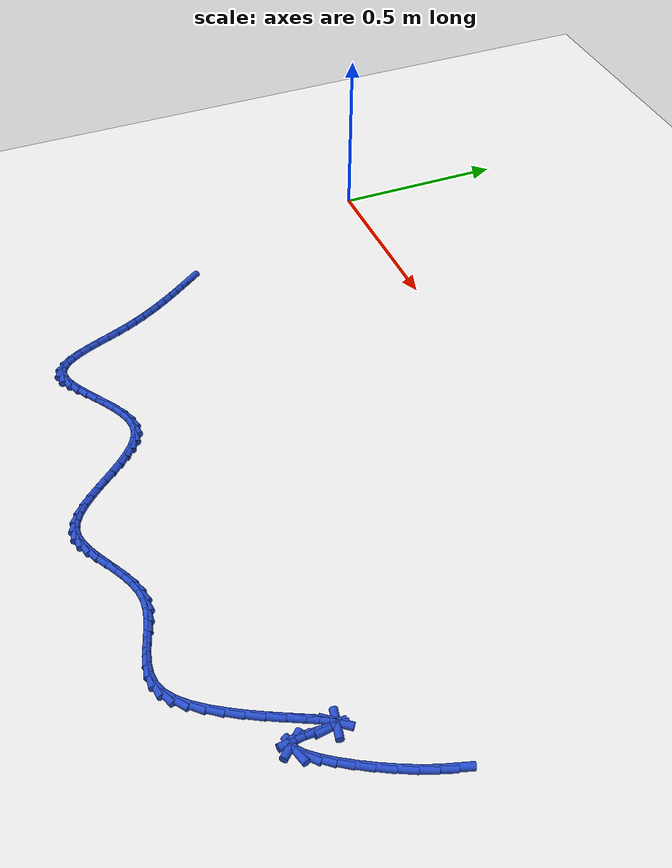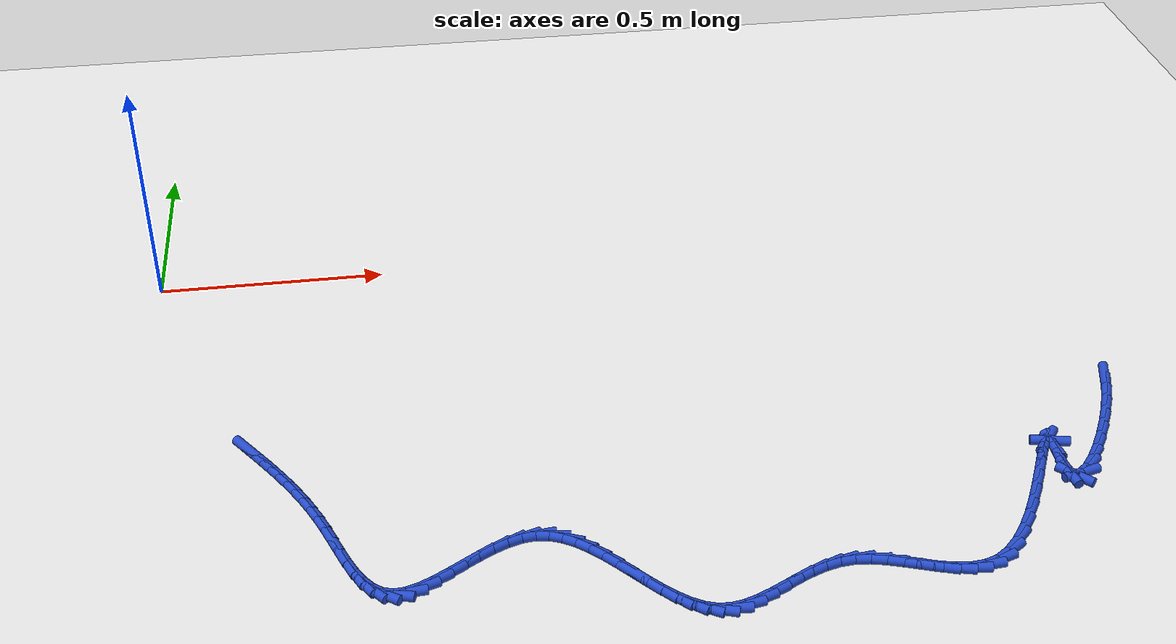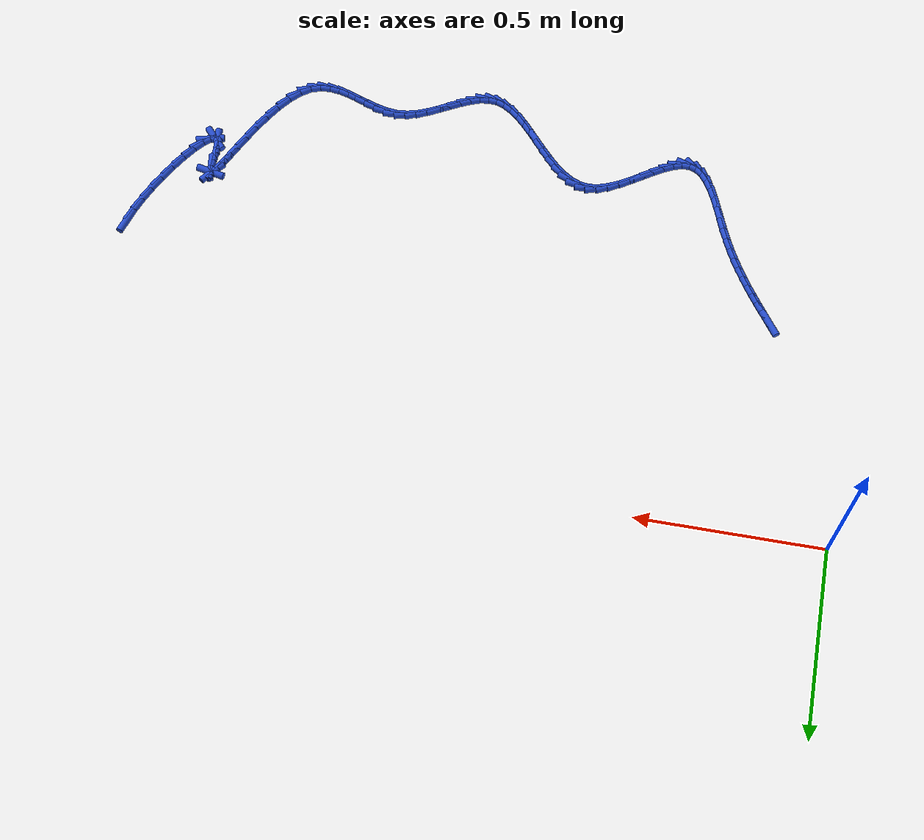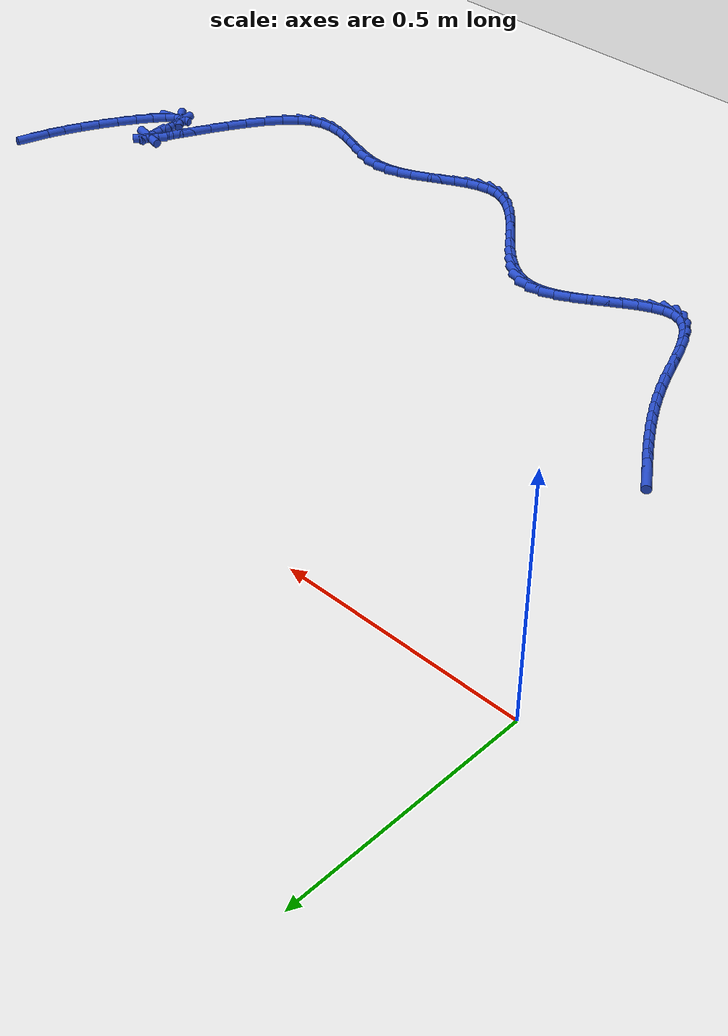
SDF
<sdf version="1.6">
 <world name="default">
  <model name="ground_plane">
   <static>1</static>
   <link name="link">
    <collision name="collision">
     <geometry><plane><normal>0 0 1</normal><size>100 100</size></plane></geometry>
     <surface><friction><ode><mu>100</mu><mu2>50</mu2></ode></friction></surface>
    </collision>
    <visual name="visual">
     <cast_shadows>0</cast_shadows>
     <geometry><plane><normal>0 0 1</normal><size>100 100</size></plane></geometry>
     <material>
      <script><uri>file://media/materials/scripts/gazebo.material</uri><name>Gazebo/WhiteGlow</name></script>
     </material>
    </visual>
   </link>
  </model>
  <model name="line">
   <link name="link_150">
    <pose>1.997824284073144 -0.6251736266931569 0.01 0 1.57 1.273148133376823</pose>
    <collision name="collision">
     <geometry><cylinder><radius>0.01</radius><length>0.08</length></cylinder></geometry>
    </collision>
    <visual name="visual">
     <material>
      <script><name>Gazebo/Blue</name><uri>file://media/materials/scripts/gazebo.material</uri></script>
     </material>
     <geometry><cylinder><radius>0.01</radius><length>0.08</length></cylinder></geometry>
    </visual>
   </link>
   <link name="link_151">
    <pose>1.9872887275271942 -0.659518107514912 0.01 0 1.57 1.209016525096521</pose>
    <collision name="collision">
     <geometry><cylinder><radius>0.01</radius><length>0.08</length></cylinder></geometry>
    </collision>
    <visual name="visual">
     <material>
      <script><name>Gazebo/Blue</name><uri>file://media/materials/scripts/gazebo.material</uri></script>
     </material>
     <geometry><cylinder><radius>0.01</radius><length>0.08</length></cylinder></geometry>
    </visual>
   </link>
   <link name="link_152">
    <pose>1.9732027065877626 -0.6967397626959203 0.01 0 1.57 1.1523223785344883</pose>
    <collision name="collision">
     <geometry><cylinder><radius>0.01</radius><length>0.08</length></cylinder></geometry>
    </collision>
    <visual name="visual">
     <material>
      <script><name>Gazebo/Blue</name><uri>file://media/materials/scripts/gazebo.material</uri></script>
     </material>
     <geometry><cylinder><radius>0.01</radius><length>0.08</length></cylinder></geometry>
    </visual>
   </link>
   <link name="link_153">
    <pose>1.9555031663717912 -0.736536958267599 0.01 0 1.57 1.1056660417871258</pose>
    <collision name="collision">
     <geometry><cylinder><radius>0.01</radius><length>0.08</length></cylinder></geometry>
    </collision>
    <visual name="visual">
     <material>
      <script><name>Gazebo/Blue</name><uri>file://media/materials/scripts/gazebo.material</uri></script>
     </material>
     <geometry><cylinder><radius>0.01</radius><length>0.08</length></cylinder></geometry>
    </visual>
   </link>
   <link name="link_154">
    <pose>1.93513845444502 -0.7771158570219333 0.01 0 1.57 1.0622238923198977</pose>
    <collision name="collision">
     <geometry><cylinder><radius>0.01</radius><length>0.08</length></cylinder></geometry>
    </collision>
    <visual name="visual">
     <material>
      <script><name>Gazebo/Blue</name><uri>file://media/materials/scripts/gazebo.material</uri></script>
     </material>
     <geometry><cylinder><radius>0.01</radius><length>0.08</length></cylinder></geometry>
    </visual>
   </link>
   <link name="link_155">
    <pose>1.9131899876419094 -0.8164862939744707 0.01 0 1.57 1.015315833927347</pose>
    <collision name="collision">
     <geometry><cylinder><radius>0.01</radius><length>0.08</length></cylinder></geometry>
    </collision>
    <visual name="visual">
     <material>
      <script><name>Gazebo/Blue</name><uri>file://media/materials/scripts/gazebo.material</uri></script>
     </material>
     <geometry><cylinder><radius>0.01</radius><length>0.08</length></cylinder></geometry>
    </visual>
   </link>
   <link name="link_156">
    <pose>1.8907391827969207 -0.8526581041407615 0.01 0 1.57 0.9561040756286149</pose>
    <collision name="collision">
     <geometry><cylinder><radius>0.01</radius><length>0.08</length></cylinder></geometry>
    </collision>
    <visual name="visual">
     <material>
      <script><name>Gazebo/Blue</name><uri>file://media/materials/scripts/gazebo.material</uri></script>
     </material>
     <geometry><cylinder><radius>0.01</radius><length>0.08</length></cylinder></geometry>
    </visual>
   </link>
   <link name="link_157">
    <pose>1.8688674567445145 -0.8836411225363513 0.01 0 1.57 0.8668444785309124</pose>
    <collision name="collision">
     <geometry><cylinder><radius>0.01</radius><length>0.08</length></cylinder></geometry>
    </collision>
    <visual name="visual">
     <material>
      <script><name>Gazebo/Blue</name><uri>file://media/materials/scripts/gazebo.material</uri></script>
     </material>
     <geometry><cylinder><radius>0.01</radius><length>0.08</length></cylinder></geometry>
    </visual>
   </link>
   <link name="link_158">
    <pose>1.8486562263191524 -0.9074451841767902 0.01 0 1.57 0.6973398097728181</pose>
    <collision name="collision">
     <geometry><cylinder><radius>0.01</radius><length>0.08</length></cylinder></geometry>
    </collision>
    <visual name="visual">
     <material>
      <script><name>Gazebo/Blue</name><uri>file://media/materials/scripts/gazebo.material</uri></script>
     </material>
     <geometry><cylinder><radius>0.01</radius><length>0.08</length></cylinder></geometry>
    </visual>
   </link>
   <link name="link_159">
    <pose>1.8311869083552945 -0.9220801240776264 0.01 0 1.57 0.24939864420471491</pose>
    <collision name="collision">
     <geometry><cylinder><radius>0.01</radius><length>0.08</length></cylinder></geometry>
    </collision>
    <visual name="visual">
     <material>
      <script><name>Gazebo/Blue</name><uri>file://media/materials/scripts/gazebo.material</uri></script>
     </material>
     <geometry><cylinder><radius>0.01</radius><length>0.08</length></cylinder></geometry>
    </visual>
   </link>
   <link name="link_160">
    <pose>1.8175409196874015 -0.9255557772544084 0.01 0 1.57 -0.8359959346424193</pose>
    <collision name="collision">
     <geometry><cylinder><radius>0.01</radius><length>0.08</length></cylinder></geometry>
    </collision>
    <visual name="visual">
     <material>
      <script><name>Gazebo/Blue</name><uri>file://media/materials/scripts/gazebo.material</uri></script>
     </material>
     <geometry><cylinder><radius>0.01</radius><length>0.08</length></cylinder></geometry>
    </visual>
   </link>
   <link name="link_161">
    <pose>1.808799677149935 -0.915881978722685 0.01 0 1.57 -1.447368604076655</pose>
    <collision name="collision">
     <geometry><cylinder><radius>0.01</radius><length>0.08</length></cylinder></geometry>
    </collision>
    <visual name="visual">
     <material>
      <script><name>Gazebo/Blue</name><uri>file://media/materials/scripts/gazebo.material</uri></script>
     </material>
     <geometry><cylinder><radius>0.01</radius><length>0.08</length></cylinder></geometry>
    </visual>
   </link>
   <link name="link_162">
    <pose>1.8058061577579647 -0.8917520476864306 0.01 0 1.57 1.5444239076101356</pose>
    <collision name="collision">
     <geometry><cylinder><radius>0.01</radius><length>0.08</length></cylinder></geometry>
    </collision>
    <visual name="visual">
     <material>
      <script><name>Gazebo/Blue</name><uri>file://media/materials/scripts/gazebo.material</uri></script>
     </material>
     <geometry><cylinder><radius>0.01</radius><length>0.08</length></cylinder></geometry>
    </visual>
   </link>
   <link name="link_163">
    <pose>1.8066503027493375 -0.8597508393720222 0.01 0 1.57 1.5352184092595864</pose>
    <collision name="collision">
     <geometry><cylinder><radius>0.01</radius><length>0.08</length></cylinder></geometry>
    </collision>
    <visual name="visual">
     <material>
      <script><name>Gazebo/Blue</name><uri>file://media/materials/scripts/gazebo.material</uri></script>
     </material>
     <geometry><cylinder><radius>0.01</radius><length>0.08</length></cylinder></geometry>
    </visual>
   </link>
   <link name="link_164">
    <pose>1.8076548004151183 -0.831529013237535 0.01 0 1.57 -1.4431042362533353</pose>
    <collision name="collision">
     <geometry><cylinder><radius>0.01</radius><length>0.08</length></cylinder></geometry>
    </collision>
    <visual name="visual">
     <material>
      <script><name>Gazebo/Blue</name><uri>file://media/materials/scripts/gazebo.material</uri></script>
     </material>
     <geometry><cylinder><radius>0.01</radius><length>0.08</length></cylinder></geometry>
    </visual>
   </link>
   <link name="link_165">
    <pose>1.8057419084009385 -0.8166300171694167 0.01 0 1.57 -0.21988230270854958</pose>
    <collision name="collision">
     <geometry><cylinder><radius>0.01</radius><length>0.08</length></cylinder></geometry>
    </collision>
    <visual name="visual">
     <material>
      <script><name>Gazebo/Blue</name><uri>file://media/materials/scripts/gazebo.material</uri></script>
     </material>
     <geometry><cylinder><radius>0.01</radius><length>0.08</length></cylinder></geometry>
    </visual>
   </link>
   <link name="link_166">
    <pose>1.8004591474645155 -0.8154493420661095 0.01 0 1.57 0.8970080919343631</pose>
    <collision name="collision">
     <geometry><cylinder><radius>0.01</radius><length>0.08</length></cylinder></geometry>
    </collision>
    <visual name="visual">
     <material>
      <script><name>Gazebo/Blue</name><uri>file://media/materials/scripts/gazebo.material</uri></script>
     </material>
     <geometry><cylinder><radius>0.01</radius><length>0.08</length></cylinder></geometry>
    </visual>
   </link>
   <link name="link_167">
    <pose>1.7920392524375728 -0.8259947909605125 0.01 0 1.57 1.061515863235991</pose>
    <collision name="collision">
     <geometry><cylinder><radius>0.01</radius><length>0.08</length></cylinder></geometry>
    </collision>
    <visual name="visual">
     <material>
      <script><name>Gazebo/Blue</name><uri>file://media/materials/scripts/gazebo.material</uri></script>
     </material>
     <geometry><cylinder><radius>0.01</radius><length>0.08</length></cylinder></geometry>
    </visual>
   </link>
   <link name="link_168">
    <pose>1.780714960098585 -0.8462741601019013 0.01 0 1.57 1.107565346468793</pose>
    <collision name="collision">
     <geometry><cylinder><radius>0.01</radius><length>0.08</length></cylinder></geometry>
    </collision>
    <visual name="visual">
     <material>
      <script><name>Gazebo/Blue</name><uri>file://media/materials/scripts/gazebo.material</uri></script>
     </material>
     <geometry><cylinder><radius>0.01</radius><length>0.08</length></cylinder></geometry>
    </visual>
   </link>
   <link name="link_169">
    <pose>1.7667190072260257 -0.8742952457395505 0.01 0 1.57 1.1178757086890392</pose>
    <collision name="collision">
     <geometry><cylinder><radius>0.01</radius><length>0.08</length></cylinder></geometry>
    </collision>
    <visual name="visual">
     <material>
      <script><name>Gazebo/Blue</name><uri>file://media/materials/scripts/gazebo.material</uri></script>
     </material>
     <geometry><cylinder><radius>0.01</radius><length>0.08</length></cylinder></geometry>
    </visual>
   </link>
   <link name="link_170">
    <pose>1.7502841305983692 -0.9080658441227358 0.01 0 1.57 1.109771853271108</pose>
    <collision name="collision">
     <geometry><cylinder><radius>0.01</radius><length>0.08</length></cylinder></geometry>
    </collision>
    <visual name="visual">
     <material>
      <script><name>Gazebo/Blue</name><uri>file://media/materials/scripts/gazebo.material</uri></script>
     </material>
     <geometry><cylinder><radius>0.01</radius><length>0.08</length></cylinder></geometry>
    </visual>
   </link>
   <link name="link_171">
    <pose>1.7316430669940897 -0.9455937515007324 0.01 0 1.57 1.0876350209896852</pose>
    <collision name="collision">
     <geometry><cylinder><radius>0.01</radius><length>0.08</length></cylinder></geometry>
    </collision>
    <visual name="visual">
     <material>
      <script><name>Gazebo/Blue</name><uri>file://media/materials/scripts/gazebo.material</uri></script>
     </material>
     <geometry><cylinder><radius>0.01</radius><length>0.08</length></cylinder></geometry>
    </visual>
   </link>
   <link name="link_172">
    <pose>1.7110285531916618 -0.984886764122817 0.01 0 1.57 1.0510358699360272</pose>
    <collision name="collision">
     <geometry><cylinder><radius>0.01</radius><length>0.08</length></cylinder></geometry>
    </collision>
    <visual name="visual">
     <material>
      <script><name>Gazebo/Blue</name><uri>file://media/materials/scripts/gazebo.material</uri></script>
     </material>
     <geometry><cylinder><radius>0.01</radius><length>0.08</length></cylinder></geometry>
    </visual>
   </link>
   <link name="link_173">
    <pose>1.68867332596956 -1.0239526782382622 0.01 0 1.57 0.9960845439308925</pose>
    <collision name="collision">
     <geometry><cylinder><radius>0.01</radius><length>0.08</length></cylinder></geometry>
    </collision>
    <visual name="visual">
     <material>
      <script><name>Gazebo/Blue</name><uri>file://media/materials/scripts/gazebo.material</uri></script>
     </material>
     <geometry><cylinder><radius>0.01</radius><length>0.08</length></cylinder></geometry>
    </visual>
   </link>
   <link name="link_174">
    <pose>1.6648101221062588 -1.0607992900963445 0.01 0 1.57 0.9144365756758083</pose>
    <collision name="collision">
     <geometry><cylinder><radius>0.01</radius><length>0.08</length></cylinder></geometry>
    </collision>
    <visual name="visual">
     <material>
      <script><name>Gazebo/Blue</name><uri>file://media/materials/scripts/gazebo.material</uri></script>
     </material>
     <geometry><cylinder><radius>0.01</radius><length>0.08</length></cylinder></geometry>
    </visual>
   </link>
   <link name="link_175">
    <pose>1.6396716783802332 -1.09343439594634 0.01 0 1.57 0.7901584035877314</pose>
    <collision name="collision">
     <geometry><cylinder><radius>0.01</radius><length>0.08</length></cylinder></geometry>
    </collision>
    <visual name="visual">
     <material>
      <script><name>Gazebo/Blue</name><uri>file://media/materials/scripts/gazebo.material</uri></script>
     </material>
     <geometry><cylinder><radius>0.01</radius><length>0.08</length></cylinder></geometry>
    </visual>
   </link>
   <link name="link_176">
    <pose>1.6134907315699551 -1.1198657920375228 0.01 0 1.57 0.5947471019056602</pose>
    <collision name="collision">
     <geometry><cylinder><radius>0.01</radius><length>0.08</length></cylinder></geometry>
    </collision>
    <visual name="visual">
     <material>
      <script><name>Gazebo/Blue</name><uri>file://media/materials/scripts/gazebo.material</uri></script>
     </material>
     <geometry><cylinder><radius>0.01</radius><length>0.08</length></cylinder></geometry>
    </visual>
   </link>
   <link name="link_177">
    <pose>1.5864990870485542 -1.1381243674470491 0.01 0 1.57 0.33033021718648886</pose>
    <collision name="collision">
     <geometry><cylinder><radius>0.01</radius><length>0.08</length></cylinder></geometry>
    </collision>
    <visual name="visual">
     <material>
      <script><name>Gazebo/Blue</name><uri>file://media/materials/scripts/gazebo.material</uri></script>
     </material>
     <geometry><cylinder><radius>0.01</radius><length>0.08</length></cylinder></geometry>
    </visual>
   </link>
   <link name="link_178">
    <pose>1.558873863507559 -1.1475968872188396 0.01 0 1.57 0.07646626712513357</pose>
    <collision name="collision">
     <geometry><cylinder><radius>0.01</radius><length>0.08</length></cylinder></geometry>
    </collision>
    <visual name="visual">
     <material>
      <script><name>Gazebo/Blue</name><uri>file://media/materials/scripts/gazebo.material</uri></script>
     </material>
     <geometry><cylinder><radius>0.01</radius><length>0.08</length></cylinder></geometry>
    </visual>
   </link>
   <link name="link_179">
    <pose>1.5307080968453455 -1.1497548257836168 0.01 0 1.57 -0.1219545470705175</pose>
    <collision name="collision">
     <geometry><cylinder><radius>0.01</radius><length>0.08</length></cylinder></geometry>
    </collision>
    <visual name="visual">
     <material>
      <script><name>Gazebo/Blue</name><uri>file://media/materials/scripts/gazebo.material</uri></script>
     </material>
     <geometry><cylinder><radius>0.01</radius><length>0.08</length></cylinder></geometry>
    </visual>
   </link>
   <link name="link_180">
    <pose>1.5020876691085943 -1.1462470268199274 0.01 0 1.57 -0.25396409373611795</pose>
    <collision name="collision">
     <geometry><cylinder><radius>0.01</radius><length>0.08</length></cylinder></geometry>
    </collision>
    <visual name="visual">
     <material>
      <script><name>Gazebo/Blue</name><uri>file://media/materials/scripts/gazebo.material</uri></script>
     </material>
     <geometry><cylinder><radius>0.01</radius><length>0.08</length></cylinder></geometry>
    </visual>
   </link>
   <link name="link_181">
    <pose>1.4730984623439862 -1.13872233400632 0.01 0 1.57 -0.32590700513328125</pose>
    <collision name="collision">
     <geometry><cylinder><radius>0.01</radius><length>0.08</length></cylinder></geometry>
    </collision>
    <visual name="visual">
     <material>
      <script><name>Gazebo/Blue</name><uri>file://media/materials/scripts/gazebo.material</uri></script>
     </material>
     <geometry><cylinder><radius>0.01</radius><length>0.08</length></cylinder></geometry>
    </visual>
   </link>
   <link name="link_182">
    <pose>1.4438263585982039 -1.1288295910213417 0.01 0 1.57 -0.3456477045312416</pose>
    <collision name="collision">
     <geometry><cylinder><radius>0.01</radius><length>0.08</length></cylinder></geometry>
    </collision>
    <visual name="visual">
     <material>
      <script><name>Gazebo/Blue</name><uri>file://media/materials/scripts/gazebo.material</uri></script>
     </material>
     <geometry><cylinder><radius>0.01</radius><length>0.08</length></cylinder></geometry>
    </visual>
   </link>
   <link name="link_183">
    <pose>1.4143572399179276 -1.1182176415435403 0.01 0 1.57 -0.3163320129038148</pose>
    <collision name="collision">
     <geometry><cylinder><radius>0.01</radius><length>0.08</length></cylinder></geometry>
    </collision>
    <visual name="visual">
     <material>
      <script><name>Gazebo/Blue</name><uri>file://media/materials/scripts/gazebo.material</uri></script>
     </material>
     <geometry><cylinder><radius>0.01</radius><length>0.08</length></cylinder></geometry>
    </visual>
   </link>
   <link name="link_184">
    <pose>1.3847769883498389 -1.108535329251464 0.01 0 1.57 -0.2354974198668616</pose>
    <collision name="collision">
     <geometry><cylinder><radius>0.01</radius><length>0.08</length></cylinder></geometry>
    </collision>
    <visual name="visual">
     <material>
      <script><name>Gazebo/Blue</name><uri>file://media/materials/scripts/gazebo.material</uri></script>
     </material>
     <geometry><cylinder><radius>0.01</radius><length>0.08</length></cylinder></geometry>
    </visual>
   </link>
   <link name="link_185">
    <pose>1.355171485940619 -1.1014314978236595 0.01 0 1.57 -0.09705472470919763</pose>
    <collision name="collision">
     <geometry><cylinder><radius>0.01</radius><length>0.08</length></cylinder></geometry>
    </collision>
    <visual name="visual">
     <material>
      <script><name>Gazebo/Blue</name><uri>file://media/materials/scripts/gazebo.material</uri></script>
     </material>
     <geometry><cylinder><radius>0.01</radius><length>0.08</length></cylinder></geometry>
    </visual>
   </link>
   <link name="link_186">
    <pose>1.3256266147369489 -1.0985549909386756 0.01 0 1.57 0.0942505610528025</pose>
    <collision name="collision">
     <geometry><cylinder><radius>0.01</radius><length>0.08</length></cylinder></geometry>
    </collision>
    <visual name="visual">
     <material>
      <script><name>Gazebo/Blue</name><uri>file://media/materials/scripts/gazebo.material</uri></script>
     </material>
     <geometry><cylinder><radius>0.01</radius><length>0.08</length></cylinder></geometry>
    </visual>
   </link>
   <link name="link_187">
    <pose>1.296227847191642 -1.1013340751758234 0.01 0 1.57 0.2667986727087532</pose>
    <collision name="collision">
     <geometry><cylinder><radius>0.01</radius><length>0.08</length></cylinder></geometry>
    </collision>
    <visual name="visual">
     <material>
      <script><name>Gazebo/Blue</name><uri>file://media/materials/scripts/gazebo.material</uri></script>
     </material>
     <geometry><cylinder><radius>0.01</radius><length>0.08</length></cylinder></geometry>
    </visual>
   </link>
   <link name="link_188">
    <pose>1.267057145878959 -1.1093068549578657 0.01 0 1.57 0.3864300877032507</pose>
    <collision name="collision">
     <geometry><cylinder><radius>0.01</radius><length>0.08</length></cylinder></geometry>
    </collision>
    <visual name="visual">
     <material>
      <script><name>Gazebo/Blue</name><uri>file://media/materials/scripts/gazebo.material</uri></script>
     </material>
     <geometry><cylinder><radius>0.01</radius><length>0.08</length></cylinder></geometry>
    </visual>
   </link>
   <link name="link_189">
    <pose>1.2381946892539941 -1.121050639485501 0.01 0 1.57 0.45935377705418606</pose>
    <collision name="collision">
     <geometry><cylinder><radius>0.01</radius><length>0.08</length></cylinder></geometry>
    </collision>
    <visual name="visual">
     <material>
      <script><name>Gazebo/Blue</name><uri>file://media/materials/scripts/gazebo.material</uri></script>
     </material>
     <geometry><cylinder><radius>0.01</radius><length>0.08</length></cylinder></geometry>
    </visual>
   </link>
   <link name="link_190">
    <pose>1.2097206417025244 -1.1351351612641996 0.01 0 1.57 0.49158882794794956</pose>
    <collision name="collision">
     <geometry><cylinder><radius>0.01</radius><length>0.08</length></cylinder></geometry>
    </collision>
    <visual name="visual">
     <material>
      <script><name>Gazebo/Blue</name><uri>file://media/materials/scripts/gazebo.material</uri></script>
     </material>
     <geometry><cylinder><radius>0.01</radius><length>0.08</length></cylinder></geometry>
    </visual>
   </link>
   <link name="link_191">
    <pose>1.18171516761033 -1.1501301527994328 0.01 0 1.57 0.4851701542567957</pose>
    <collision name="collision">
     <geometry><cylinder><radius>0.01</radius><length>0.08</length></cylinder></geometry>
    </collision>
    <visual name="visual">
     <material>
      <script><name>Gazebo/Blue</name><uri>file://media/materials/scripts/gazebo.material</uri></script>
     </material>
     <geometry><cylinder><radius>0.01</radius><length>0.08</length></cylinder></geometry>
    </visual>
   </link>
   <link name="link_192">
    <pose>1.1542584313631903 -1.1646053465966713 0.01 0 1.57 0.43679465922099603</pose>
    <collision name="collision">
     <geometry><cylinder><radius>0.01</radius><length>0.08</length></cylinder></geometry>
    </collision>
    <visual name="visual">
     <material>
      <script><name>Gazebo/Blue</name><uri>file://media/materials/scripts/gazebo.material</uri></script>
     </material>
     <geometry><cylinder><radius>0.01</radius><length>0.08</length></cylinder></geometry>
    </visual>
   </link>
   <link name="link_193">
    <pose>1.1274305973468843 -1.1771304751613856 0.01 0 1.57 0.33678489130832523</pose>
    <collision name="collision">
     <geometry><cylinder><radius>0.01</radius><length>0.08</length></cylinder></geometry>
    </collision>
    <visual name="visual">
     <material>
      <script><name>Gazebo/Blue</name><uri>file://media/materials/scripts/gazebo.material</uri></script>
     </material>
     <geometry><cylinder><radius>0.01</radius><length>0.08</length></cylinder></geometry>
    </visual>
   </link>
   <link name="link_194">
    <pose>1.1013118299471913 -1.1862752709990463 0.01 0 1.57 0.16947103030167088</pose>
    <collision name="collision">
     <geometry><cylinder><radius>0.01</radius><length>0.08</length></cylinder></geometry>
    </collision>
    <visual name="visual">
     <material>
      <script><name>Gazebo/Blue</name><uri>file://media/materials/scripts/gazebo.material</uri></script>
     </material>
     <geometry><cylinder><radius>0.01</radius><length>0.08</length></cylinder></geometry>
    </visual>
   </link>
   <link name="link_195">
    <pose>1.0759822935498913 -1.1906094666151246 0.01 0 1.57 -0.07698163426627207</pose>
    <collision name="collision">
     <geometry><cylinder><radius>0.01</radius><length>0.08</length></cylinder></geometry>
    </collision>
    <visual name="visual">
     <material>
      <script><name>Gazebo/Blue</name><uri>file://media/materials/scripts/gazebo.material</uri></script>
     </material>
     <geometry><cylinder><radius>0.01</radius><length>0.08</length></cylinder></geometry>
    </visual>
   </link>
   <link name="link_196">
    <pose>1.0515202423477015 -1.1887226091821046 0.01 0 1.57 -0.34685741453951635</pose>
    <collision name="collision">
     <geometry><cylinder><radius>0.01</radius><length>0.08</length></cylinder></geometry>
    </collision>
    <visual name="visual">
     <material>
      <script><name>Gazebo/Blue</name><uri>file://media/materials/scripts/gazebo.material</uri></script>
     </material>
     <geometry><cylinder><radius>0.01</radius><length>0.08</length></cylinder></geometry>
    </visual>
   </link>
   <link name="link_197">
    <pose>1.0279091069306538 -1.180187862738288 0.01 0 1.57 -0.5545591838427593</pose>
    <collision name="collision">
     <geometry><cylinder><radius>0.01</radius><length>0.08</length></cylinder></geometry>
    </collision>
    <visual name="visual">
     <material>
      <script><name>Gazebo/Blue</name><uri>file://media/materials/scripts/gazebo.material</uri></script>
     </material>
     <geometry><cylinder><radius>0.01</radius><length>0.08</length></cylinder></geometry>
    </visual>
   </link>
   <link name="link_198">
    <pose>1.0049957137379264 -1.165995402940571 0.01 0 1.57 -0.6973782741229562</pose>
    <collision name="collision">
     <geometry><cylinder><radius>0.01</radius><length>0.08</length></cylinder></geometry>
    </collision>
    <visual name="visual">
     <material>
      <script><name>Gazebo/Blue</name><uri>file://media/materials/scripts/gazebo.material</uri></script>
     </material>
     <geometry><cylinder><radius>0.01</radius><length>0.08</length></cylinder></geometry>
    </visual>
   </link>
   <link name="link_199">
    <pose>0.9826162722213841 -1.1472455367579684 0.01 0 1.57 -0.7898690063744478</pose>
    <collision name="collision">
     <geometry><cylinder><radius>0.01</radius><length>0.08</length></cylinder></geometry>
    </collision>
    <visual name="visual">
     <material>
      <script><name>Gazebo/Blue</name><uri>file://media/materials/scripts/gazebo.material</uri></script>
     </material>
     <geometry><cylinder><radius>0.01</radius><length>0.08</length></cylinder></geometry>
    </visual>
   </link>
   <link name="link_200">
    <pose>0.9606069918328921 -1.125038571159495 0.01 0 1.57 -0.8448717563219958</pose>
    <collision name="collision">
     <geometry><cylinder><radius>0.01</radius><length>0.08</length></cylinder></geometry>
    </collision>
    <visual name="visual">
     <material>
      <script><name>Gazebo/Blue</name><uri>file://media/materials/scripts/gazebo.material</uri></script>
     </material>
     <geometry><cylinder><radius>0.01</radius><length>0.08</length></cylinder></geometry>
    </visual>
   </link>
   <link name="link_201">
    <pose>0.9388040820243155 -1.1004748131141668 0.01 0 1.57 -0.8705191120268378</pose>
    <collision name="collision">
     <geometry><cylinder><radius>0.01</radius><length>0.08</length></cylinder></geometry>
    </collision>
    <visual name="visual">
     <material>
      <script><name>Gazebo/Blue</name><uri>file://media/materials/scripts/gazebo.material</uri></script>
     </material>
     <geometry><cylinder><radius>0.01</radius><length>0.08</length></cylinder></geometry>
    </visual>
   </link>
   <link name="link_202">
    <pose>0.9170437522475203 -1.0746545695909993 0.01 0 1.57 -0.8707534990862085</pose>
    <collision name="collision">
     <geometry><cylinder><radius>0.01</radius><length>0.08</length></cylinder></geometry>
    </collision>
    <visual name="visual">
     <material>
      <script><name>Gazebo/Blue</name><uri>file://media/materials/scripts/gazebo.material</uri></script>
     </material>
     <geometry><cylinder><radius>0.01</radius><length>0.08</length></cylinder></geometry>
    </visual>
   </link>
   <link name="link_203">
    <pose>0.8951622119543712 -1.048678147559007 0.01 0 1.57 -0.846040305339349</pose>
    <collision name="collision">
     <geometry><cylinder><radius>0.01</radius><length>0.08</length></cylinder></geometry>
    </collision>
    <visual name="visual">
     <material>
      <script><name>Gazebo/Blue</name><uri>file://media/materials/scripts/gazebo.material</uri></script>
     </material>
     <geometry><cylinder><radius>0.01</radius><length>0.08</length></cylinder></geometry>
    </visual>
   </link>
   <link name="link_204">
    <pose>0.8729956705967331 -1.0236458539872049 0.01 0 1.57 -0.7935668217167666</pose>
    <collision name="collision">
     <geometry><cylinder><radius>0.01</radius><length>0.08</length></cylinder></geometry>
    </collision>
    <visual name="visual">
     <material>
      <script><name>Gazebo/Blue</name><uri>file://media/materials/scripts/gazebo.material</uri></script>
     </material>
     <geometry><cylinder><radius>0.01</radius><length>0.08</length></cylinder></geometry>
    </visual>
   </link>
   <link name="link_205">
    <pose>0.8503803376264726 -1.0006579958446096 0.01 0 1.57 -0.7069728960521084</pose>
    <collision name="collision">
     <geometry><cylinder><radius>0.01</radius><length>0.08</length></cylinder></geometry>
    </collision>
    <visual name="visual">
     <material>
      <script><name>Gazebo/Blue</name><uri>file://media/materials/scripts/gazebo.material</uri></script>
     </material>
     <geometry><cylinder><radius>0.01</radius><length>0.08</length></cylinder></geometry>
    </visual>
   </link>
   <link name="link_206">
    <pose>0.8271524224954545 -0.9808148801002361 0.01 0 1.57 -0.5762369575653629</pose>
    <collision name="collision">
     <geometry><cylinder><radius>0.01</radius><length>0.08</length></cylinder></geometry>
    </collision>
    <visual name="visual">
     <material>
      <script><name>Gazebo/Blue</name><uri>file://media/materials/scripts/gazebo.material</uri></script>
     </material>
     <geometry><cylinder><radius>0.01</radius><length>0.08</length></cylinder></geometry>
    </visual>
   </link>
   <link name="link_207">
    <pose>0.8031481346555439 -0.965216813723099 0.01 0 1.57 -0.38997156309353226</pose>
    <collision name="collision">
     <geometry><cylinder><radius>0.01</radius><length>0.08</length></cylinder></geometry>
    </collision>
    <visual name="visual">
     <material>
      <script><name>Gazebo/Blue</name><uri>file://media/materials/scripts/gazebo.material</uri></script>
     </material>
     <geometry><cylinder><radius>0.01</radius><length>0.08</length></cylinder></geometry>
    </visual>
   </link>
   <link name="link_208">
    <pose>0.7782036835586067 -0.9549641036822142 0.01 0 1.57 -0.14512527623519733</pose>
    <collision name="collision">
     <geometry><cylinder><radius>0.01</radius><length>0.08</length></cylinder></geometry>
    </collision>
    <visual name="visual">
     <material>
      <script><name>Gazebo/Blue</name><uri>file://media/materials/scripts/gazebo.material</uri></script>
     </material>
     <geometry><cylinder><radius>0.01</radius><length>0.08</length></cylinder></geometry>
    </visual>
   </link>
   <link name="link_209">
    <pose>0.7521552786565076 -0.9511570569465968 0.01 0 1.57 0.12252824325880396</pose>
    <collision name="collision">
     <geometry><cylinder><radius>0.01</radius><length>0.08</length></cylinder></geometry>
    </collision>
    <visual name="visual">
     <material>
      <script><name>Gazebo/Blue</name><uri>file://media/materials/scripts/gazebo.material</uri></script>
     </material>
     <geometry><cylinder><radius>0.01</radius><length>0.08</length></cylinder></geometry>
    </visual>
   </link>
   <link name="link_210">
    <pose>0.7249157571978733 -0.9545114712817279 0.01 0 1.57 0.32388059607820097</pose>
    <collision name="collision">
     <geometry><cylinder><radius>0.01</radius><length>0.08</length></cylinder></geometry>
    </collision>
    <visual name="visual">
     <material>
      <script><name>Gazebo/Blue</name><uri>file://media/materials/scripts/gazebo.material</uri></script>
     </material>
     <geometry><cylinder><radius>0.01</radius><length>0.08</length></cylinder></geometry>
    </visual>
   </link>
   <link name="link_211">
    <pose>0.6967521073094969 -0.9639660573143427 0.01 0 1.57 0.45303866995532427</pose>
    <collision name="collision">
     <geometry><cylinder><radius>0.01</radius><length>0.08</length></cylinder></geometry>
    </collision>
    <visual name="visual">
     <material>
      <script><name>Gazebo/Blue</name><uri>file://media/materials/scripts/gazebo.material</uri></script>
     </material>
     <geometry><cylinder><radius>0.01</radius><length>0.08</length></cylinder></geometry>
    </visual>
   </link>
   <link name="link_212">
    <pose>0.6680335596290153 -0.9779464848677899 0.01 0 1.57 0.5299078914554063</pose>
    <collision name="collision">
     <geometry><cylinder><radius>0.01</radius><length>0.08</length></cylinder></geometry>
    </collision>
    <visual name="visual">
     <material>
      <script><name>Gazebo/Blue</name><uri>file://media/materials/scripts/gazebo.material</uri></script>
     </material>
     <geometry><cylinder><radius>0.01</radius><length>0.08</length></cylinder></geometry>
    </visual>
   </link>
   <link name="link_213">
    <pose>0.639129354675433 -0.994878374181885 0.01 0 1.57 0.5675271024568304</pose>
    <collision name="collision">
     <geometry><cylinder><radius>0.01</radius><length>0.08</length></cylinder></geometry>
    </collision>
    <visual name="visual">
     <material>
      <script><name>Gazebo/Blue</name><uri>file://media/materials/scripts/gazebo.material</uri></script>
     </material>
     <geometry><cylinder><radius>0.01</radius><length>0.08</length></cylinder></geometry>
    </visual>
   </link>
   <link name="link_214">
    <pose>0.6104087329677564 -1.0131873454964415 0.01 0 1.57 0.5714330174279415</pose>
    <collision name="collision">
     <geometry><cylinder><radius>0.01</radius><length>0.08</length></cylinder></geometry>
    </collision>
    <visual name="visual">
     <material>
      <script><name>Gazebo/Blue</name><uri>file://media/materials/scripts/gazebo.material</uri></script>
     </material>
     <geometry><cylinder><radius>0.01</radius><length>0.08</length></cylinder></geometry>
    </visual>
   </link>
   <link name="link_215">
    <pose>0.5822409350249906 -1.0312990190512754 0.01 0 1.57 0.5402185768083319</pose>
    <collision name="collision">
     <geometry><cylinder><radius>0.01</radius><length>0.08</length></cylinder></geometry>
    </collision>
    <visual name="visual">
     <material>
      <script><name>Gazebo/Blue</name><uri>file://media/materials/scripts/gazebo.material</uri></script>
     </material>
     <geometry><cylinder><radius>0.01</radius><length>0.08</length></cylinder></geometry>
    </visual>
   </link>
   <link name="link_216">
    <pose>0.5549952013661403 -1.0476390150862012 0.01 0 1.57 0.4641629743255044</pose>
    <collision name="collision">
     <geometry><cylinder><radius>0.01</radius><length>0.08</length></cylinder></geometry>
    </collision>
    <visual name="visual">
     <material>
      <script><name>Gazebo/Blue</name><uri>file://media/materials/scripts/gazebo.material</uri></script>
     </material>
     <geometry><cylinder><radius>0.01</radius><length>0.08</length></cylinder></geometry>
    </visual>
   </link>
   <link name="link_217">
    <pose>0.529040772510211 -1.060632953841034 0.01 0 1.57 0.3208441467357733</pose>
    <collision name="collision">
     <geometry><cylinder><radius>0.01</radius><length>0.08</length></cylinder></geometry>
    </collision>
    <visual name="visual">
     <material>
      <script><name>Gazebo/Blue</name><uri>file://media/materials/scripts/gazebo.material</uri></script>
     </material>
     <geometry><cylinder><radius>0.01</radius><length>0.08</length></cylinder></geometry>
    </visual>
   </link>
   <link name="link_218">
    <pose>0.5047468889762075 -1.0687064555555879 0.01 0 1.57 0.07078872458837442</pose>
    <collision name="collision">
     <geometry><cylinder><radius>0.01</radius><length>0.08</length></cylinder></geometry>
    </collision>
    <visual name="visual">
     <material>
      <script><name>Gazebo/Blue</name><uri>file://media/materials/scripts/gazebo.material</uri></script>
     </material>
     <geometry><cylinder><radius>0.01</radius><length>0.08</length></cylinder></geometry>
    </visual>
   </link>
   <link name="link_219">
    <pose>0.48248279128313526 -1.0702851404696787 0.01 0 1.57 -0.30777152515521705</pose>
    <collision name="collision">
     <geometry><cylinder><radius>0.01</radius><length>0.08</length></cylinder></geometry>
    </collision>
    <visual name="visual">
     <material>
      <script><name>Gazebo/Blue</name><uri>file://media/materials/scripts/gazebo.material</uri></script>
     </material>
     <geometry><cylinder><radius>0.01</radius><length>0.08</length></cylinder></geometry>
    </visual>
   </link>
   <link name="link_220">
    <pose>0.4625740469700022 -1.0639567057925519 0.01 0 1.57 -0.6684871287121842</pose>
    <collision name="collision">
     <geometry><cylinder><radius>0.01</radius><length>0.08</length></cylinder></geometry>
    </collision>
    <visual name="visual">
     <material>
      <script><name>Gazebo/Blue</name><uri>file://media/materials/scripts/gazebo.material</uri></script>
     </material>
     <geometry><cylinder><radius>0.01</radius><length>0.08</length></cylinder></geometry>
    </visual>
   </link>
   <link name="link_221">
    <pose>0.44489267121894366 -1.0499920494558694 0.01 0 1.57 -0.9086299017010525</pose>
    <collision name="collision">
     <geometry><cylinder><radius>0.01</radius><length>0.08</length></cylinder></geometry>
    </collision>
    <visual name="visual">
     <material>
      <script><name>Gazebo/Blue</name><uri>file://media/materials/scripts/gazebo.material</uri></script>
     </material>
     <geometry><cylinder><radius>0.01</radius><length>0.08</length></cylinder></geometry>
    </visual>
   </link>
   <link name="link_222">
    <pose>0.4290418788884613 -1.0296596276490448 0.01 0 1.57 -1.0547528648066542</pose>
    <collision name="collision">
     <geometry><cylinder><radius>0.01</radius><length>0.08</length></cylinder></geometry>
    </collision>
    <visual name="visual">
     <material>
      <script><name>Gazebo/Blue</name><uri>file://media/materials/scripts/gazebo.material</uri></script>
     </material>
     <geometry><cylinder><radius>0.01</radius><length>0.08</length></cylinder></geometry>
    </visual>
   </link>
   <link name="link_223">
    <pose>0.4146213627116485 -1.0042409676963748 0.01 0 1.57 -1.1411329611143206</pose>
    <collision name="collision">
     <geometry><cylinder><radius>0.01</radius><length>0.08</length></cylinder></geometry>
    </collision>
    <visual name="visual">
     <material>
      <script><name>Gazebo/Blue</name><uri>file://media/materials/scripts/gazebo.material</uri></script>
     </material>
     <geometry><cylinder><radius>0.01</radius><length>0.08</length></cylinder></geometry>
    </visual>
   </link>
   <link name="link_224">
    <pose>0.40123081542159844 -0.975017596922155 0.01 0 1.57 -1.188600333203</pose>
    <collision name="collision">
     <geometry><cylinder><radius>0.01</radius><length>0.08</length></cylinder></geometry>
    </collision>
    <visual name="visual">
     <material>
      <script><name>Gazebo/Blue</name><uri>file://media/materials/scripts/gazebo.material</uri></script>
     </material>
     <geometry><cylinder><radius>0.01</radius><length>0.08</length></cylinder></geometry>
    </visual>
   </link>
   <link name="link_225">
    <pose>0.3884699297514045 -0.9432710426506816 0.01 0 1.57 -1.2077549759560342</pose>
    <collision name="collision">
     <geometry><cylinder><radius>0.01</radius><length>0.08</length></cylinder></geometry>
    </collision>
    <visual name="visual">
     <material>
      <script><name>Gazebo/Blue</name><uri>file://media/materials/scripts/gazebo.material</uri></script>
     </material>
     <geometry><cylinder><radius>0.01</radius><length>0.08</length></cylinder></geometry>
    </visual>
   </link>
   <link name="link_226">
    <pose>0.37593839843415994 -0.9102828322062514 0.01 0 1.57 -1.202828336752413</pose>
    <collision name="collision">
     <geometry><cylinder><radius>0.01</radius><length>0.08</length></cylinder></geometry>
    </collision>
    <visual name="visual">
     <material>
      <script><name>Gazebo/Blue</name><uri>file://media/materials/scripts/gazebo.material</uri></script>
     </material>
     <geometry><cylinder><radius>0.01</radius><length>0.08</length></cylinder></geometry>
    </visual>
   </link>
   <link name="link_227">
    <pose>0.36323591420295814 -0.8773344929131603 0.01 0 1.57 -1.1748700741870663</pose>
    <collision name="collision">
     <geometry><cylinder><radius>0.01</radius><length>0.08</length></cylinder></geometry>
    </collision>
    <visual name="visual">
     <material>
      <script><name>Gazebo/Blue</name><uri>file://media/materials/scripts/gazebo.material</uri></script>
     </material>
     <geometry><cylinder><radius>0.01</radius><length>0.08</length></cylinder></geometry>
    </visual>
   </link>
   <link name="link_228">
    <pose>0.3499860961589348 -0.8456363258736195 0.01 0 1.57 -1.1378829743694097</pose>
    <collision name="collision">
     <geometry><cylinder><radius>0.01</radius><length>0.08</length></cylinder></geometry>
    </collision>
    <visual name="visual">
     <material>
      <script><name>Gazebo/Blue</name><uri>file://media/materials/scripts/gazebo.material</uri></script>
     </material>
     <geometry><cylinder><radius>0.01</radius><length>0.08</length></cylinder></geometry>
    </visual>
   </link>
   <link name="link_229">
    <pose>0.33609090512795387 -0.8155700388376984 0.01 0 1.57 -1.1025376369465643</pose>
    <collision name="collision">
     <geometry><cylinder><radius>0.01</radius><length>0.08</length></cylinder></geometry>
    </collision>
    <visual name="visual">
     <material>
      <script><name>Gazebo/Blue</name><uri>file://media/materials/scripts/gazebo.material</uri></script>
     </material>
     <geometry><cylinder><radius>0.01</radius><length>0.08</length></cylinder></geometry>
    </visual>
   </link>
   <link name="link_230">
    <pose>0.32163197116057707 -0.7869824836142215 0.01 0 1.57 -1.0696705402070152</pose>
    <collision name="collision">
     <geometry><cylinder><radius>0.01</radius><length>0.08</length></cylinder></geometry>
    </collision>
    <visual name="visual">
     <material>
      <script><name>Gazebo/Blue</name><uri>file://media/materials/scripts/gazebo.material</uri></script>
     </material>
     <geometry><cylinder><radius>0.01</radius><length>0.08</length></cylinder></geometry>
    </visual>
   </link>
   <link name="link_231">
    <pose>0.30669392301679577 -0.7597115851768352 0.01 0 1.57 -1.0399262588781883</pose>
    <collision name="collision">
     <geometry><cylinder><radius>0.01</radius><length>0.08</length></cylinder></geometry>
    </collision>
    <visual name="visual">
     <material>
      <script><name>Gazebo/Blue</name><uri>file://media/materials/scripts/gazebo.material</uri></script>
     </material>
     <geometry><cylinder><radius>0.01</radius><length>0.08</length></cylinder></geometry>
    </visual>
   </link>
   <link name="link_232">
    <pose>0.2913613894566011 -0.7335952684991873 0.01 0 1.57 -1.01391593458034</pose>
    <collision name="collision">
     <geometry><cylinder><radius>0.01</radius><length>0.08</length></cylinder></geometry>
    </collision>
    <visual name="visual">
     <material>
      <script><name>Gazebo/Blue</name><uri>file://media/materials/scripts/gazebo.material</uri></script>
     </material>
     <geometry><cylinder><radius>0.01</radius><length>0.08</length></cylinder></geometry>
    </visual>
   </link>
   <link name="link_233">
    <pose>0.27571899923998455 -0.7084714585549253 0.01 0 1.57 -0.9921983940745871</pose>
    <collision name="collision">
     <geometry><cylinder><radius>0.01</radius><length>0.08</length></cylinder></geometry>
    </collision>
    <visual name="visual">
     <material>
      <script><name>Gazebo/Blue</name><uri>file://media/materials/scripts/gazebo.material</uri></script>
     </material>
     <geometry><cylinder><radius>0.01</radius><length>0.08</length></cylinder></geometry>
    </visual>
   </link>
   <link name="link_234">
    <pose>0.2598513811269375 -0.6841780803176966 0.01 0 1.57 -0.9752654628177071</pose>
    <collision name="collision">
     <geometry><cylinder><radius>0.01</radius><length>0.08</length></cylinder></geometry>
    </collision>
    <visual name="visual">
     <material>
      <script><name>Gazebo/Blue</name><uri>file://media/materials/scripts/gazebo.material</uri></script>
     </material>
     <geometry><cylinder><radius>0.01</radius><length>0.08</length></cylinder></geometry>
    </visual>
   </link>
   <link name="link_235">
    <pose>0.24384316387745145 -0.6605530587611489 0.01 0 1.57 -0.9635312798944035</pose>
    <collision name="collision">
     <geometry><cylinder><radius>0.01</radius><length>0.08</length></cylinder></geometry>
    </collision>
    <visual name="visual">
     <material>
      <script><name>Gazebo/Blue</name><uri>file://media/materials/scripts/gazebo.material</uri></script>
     </material>
     <geometry><cylinder><radius>0.01</radius><length>0.08</length></cylinder></geometry>
    </visual>
   </link>
   <link name="link_236">
    <pose>0.22777897625151725 -0.637434318858929 0.01 0 1.57 -0.9573245579055452</pose>
    <collision name="collision">
     <geometry><cylinder><radius>0.01</radius><length>0.08</length></cylinder></geometry>
    </collision>
    <visual name="visual">
     <material>
      <script><name>Gazebo/Blue</name><uri>file://media/materials/scripts/gazebo.material</uri></script>
     </material>
     <geometry><cylinder><radius>0.01</radius><length>0.08</length></cylinder></geometry>
    </visual>
   </link>
   <link name="link_237">
    <pose>0.21174344700912742 -0.6146597855846858 0.01 0 1.57 -0.95688224646507</pose>
    <collision name="collision">
     <geometry><cylinder><radius>0.01</radius><length>0.08</length></cylinder></geometry>
    </collision>
    <visual name="visual">
     <material>
      <script><name>Gazebo/Blue</name><uri>file://media/materials/scripts/gazebo.material</uri></script>
     </material>
     <geometry><cylinder><radius>0.01</radius><length>0.08</length></cylinder></geometry>
    </visual>
   </link>
  </model>
 </world>
</sdf>
